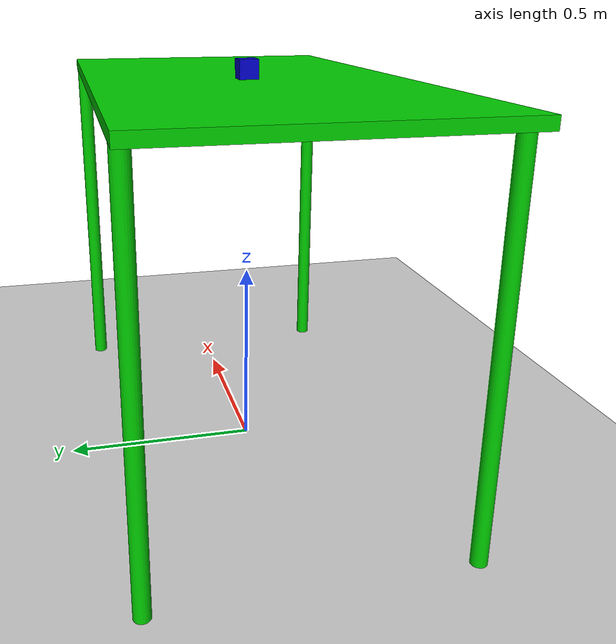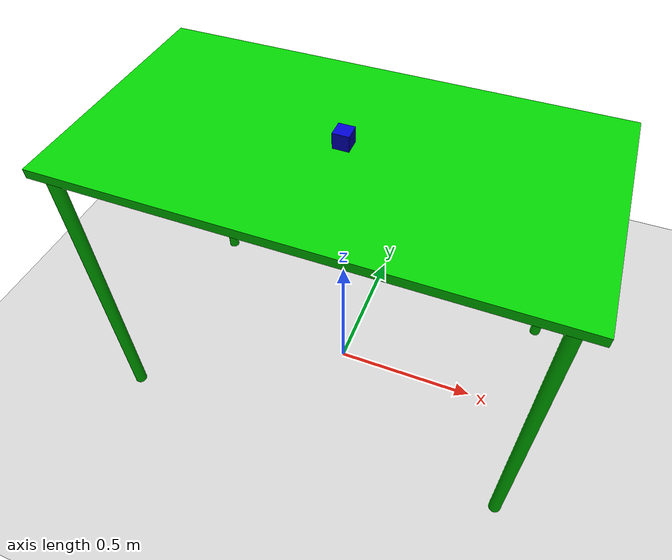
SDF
<?xml version="1.0" ?>
<sdf version="1.6">
    <world name="default">
        <physics default="true" type="dart">
        </physics>
        <plugin
                filename="libPhysicsSystem.so"
                name="gympp::plugins::Physics">
        </plugin>
        <plugin
                filename="libignition-gazebo-user-commands-system.so"
                name="ignition::gazebo::systems::UserCommands">
        </plugin>
        <plugin
                filename="libignition-gazebo-scene-broadcaster-system.so"
                name="ignition::gazebo::systems::SceneBroadcaster">
        </plugin>
        <plugin
                filename="libECMProvider.so"
                name="gympp::plugins::ECMProvider">
        </plugin>

        <gui fullscreen="0">
            <!-- 3D scene -->
            <plugin filename="GzScene3D" name="3D View">
                <ignition-gui>
                    <title>3D View</title>
                    <property type="bool" key="showTitleBar">false</property>
                    <property type="string" key="state">docked</property>
                </ignition-gui>
                <engine>ogre</engine>
                <scene>scene</scene>
                <ambient_light>0.4 0.4 0.4</ambient_light>
                <background_color>0.8 0.8 0.8</background_color>
                <camera_pose>-6 0 6 0 0.5 0</camera_pose>
                <service>/world/default/scene/info</service>
                <pose_topic>/world/default/pose/info</pose_topic>
            </plugin>

            <!-- World control -->
            <plugin filename="WorldControl" name="World control">
                <ignition-gui>
                    <title>World control</title>
                    <property type="bool" key="showTitleBar">false</property>
                    <property type="bool" key="resizable">false</property>
                    <property type="double" key="height">72</property>
                    <property type="double" key="width">121</property>
                    <property type="double" key="z">1</property>
                    <property type="string" key="state">floating</property>
                    <anchors target="3D View">
                        <line own="left" target="left"/>
                        <line own="bottom" target="bottom"/>
                    </anchors>
                </ignition-gui>
                <play_pause>true</play_pause>
                <step>true</step>
                <start_paused>true</start_paused>
                <service>/world/default/control</service>
                <stats_topic>/world/default/stats</stats_topic>
            </plugin>

            <!-- World statistics -->
            <plugin filename="WorldStats" name="World stats">
                <ignition-gui>
                    <title>World stats</title>
                    <property type="bool" key="showTitleBar">false</property>
                    <property type="bool" key="resizable">false</property>
                    <property type="double" key="height">110</property>
                    <property type="double" key="width">290</property>
                    <property type="double" key="z">1</property>
                    <property type="string" key="state">floating</property>
                    <anchors target="3D View">
                        <line own="right" target="right"/>
                        <line own="bottom" target="bottom"/>
                    </anchors>
                </ignition-gui>
                <sim_time>true</sim_time>
                <real_time>true</real_time>
                <real_time_factor>true</real_time_factor>
                <iterations>true</iterations>
                <topic>/world/default/stats</topic>
            </plugin>
        </gui>

        <light type="directional" name="sun">
            <cast_shadows>true</cast_shadows>
            <pose>10 0 3 0 0 0</pose>
            <diffuse>0.8 0.8 0.8 1</diffuse>
            <specular>0.2 0.2 0.2 1</specular>
            <attenuation>
                <range>1000</range>
                <constant>0.9</constant>
                <linear>0.01</linear>
                <quadratic>0.001</quadratic>
            </attenuation>
            <direction>0.75 0.075 -0.667</direction>
        </light>

        <model name="ground_plane">
            <static>true</static>
            <link name="link">
                <collision name="collision">
                    <geometry>
                        <plane>
                            <normal>0 0 1</normal>
                        </plane>
                    </geometry>
                    <surface>
                        <friction>
                            <ode>
                                <mu>100</mu>
                                <mu2>50</mu2>
                            </ode>
                        </friction>
                    </surface>
                </collision>
                <visual name="visual">
                    <geometry>
                        <plane>
                            <normal>0 0 1</normal>
                            <size>100 100</size>
                        </plane>
                    </geometry>
                    <material>
                        <ambient>0.8 0.8 0.8 1</ambient>
                        <diffuse>0.8 0.8 0.8 1</diffuse>
                        <specular>0.8 0.8 0.8 1</specular>
                    </material>
                </visual>
            </link>
        </model>

        <model name="table">
            <static>true</static>
            <link name="link">
              <collision name="surface">
                <pose>0 0 1.0 0 0 0</pose>
                <geometry>
                  <box>
                    <size>1.5 0.8 0.03</size>
                  </box>
                </geometry>
                <surface>
                  <friction>
                    <ode>
                      <mu>0.6</mu>
                      <mu2>0.6</mu2>
                    </ode>
                  </friction>
                </surface>
              </collision>
              <visual name="visual1">
                <pose>0 0 1.0 0 0 0</pose>
                <geometry>
                  <box>
                    <size>1.5 0.8 0.03</size>
                  </box>
                </geometry>
                <material>
                    <ambient>0.0 0.8 0.0 1</ambient>
                    <diffuse>0.0 0.8 0.0 1</diffuse>
                    <specular>0.0 0.8 0.0 1</specular>
                </material>
              </visual>
              <collision name="front_left_leg">
                <pose>0.68 0.38 0.5 0 0 0</pose>
                <geometry>
                  <cylinder>
                    <radius>0.02</radius>
                    <length>1.0</length>
                  </cylinder>
                </geometry>
              </collision>
              <visual name="front_left_leg">
                <pose>0.68 0.38 0.5 0 0 0</pose>
                <geometry>
                  <cylinder>
                    <radius>0.02</radius>
                    <length>1.0</length>
                  </cylinder>
                </geometry>
                <material>
                    <ambient>0.0 0.8 0.0 1</ambient>
                    <diffuse>0.0 0.8 0.0 1</diffuse>
                    <specular>0.0 0.8 0.0 1</specular>
                </material>
              </visual>
              <collision name="front_right_leg">
                <pose>0.68 -0.38 0.5 0 0 0</pose>
                <geometry>
                  <cylinder>
                    <radius>0.02</radius>
                    <length>1.0</length>
                  </cylinder>
                </geometry>
              </collision>
              <visual name="front_right_leg">
                <pose>0.68 -0.38 0.5 0 0 0</pose>
                <geometry>
                  <cylinder>
                    <radius>0.02</radius>
                    <length>1.0</length>
                  </cylinder>
                </geometry>
                <material>
                    <ambient>0.0 0.8 0.0 1</ambient>
                    <diffuse>0.0 0.8 0.0 1</diffuse>
                    <specular>0.0 0.8 0.0 1</specular>
                </material>
              </visual>
              <collision name="back_right_leg">
                <pose>-0.68 -0.38 0.5 0 0 0</pose>
                <geometry>
                  <cylinder>
                    <radius>0.02</radius>
                    <length>1.0</length>
                  </cylinder>
                </geometry>
              </collision>
              <visual name="back_right_leg">
                <pose>-0.68 -0.38 0.5 0 0 0</pose>
                <geometry>
                  <cylinder>
                    <radius>0.02</radius>
                    <length>1.0</length>
                  </cylinder>
                </geometry>
                <material>
                    <ambient>0.0 0.8 0.0 1</ambient>
                    <diffuse>0.0 0.8 0.0 1</diffuse>
                    <specular>0.0 0.8 0.0 1</specular>
                </material>
              </visual>
              <collision name="back_left_leg">
                <pose>-0.68 0.38 0.5 0 0 0</pose>
                <geometry>
                  <cylinder>
                    <radius>0.02</radius>
                    <length>1.0</length>
                  </cylinder>
                </geometry>
              </collision>
              <visual name="back_left_leg">
                <pose>-0.68 0.38 0.5 0 0 0</pose>
                <geometry>
                  <cylinder>
                    <radius>0.02</radius>
                    <length>1.0</length>
                  </cylinder>
                </geometry>
                <material>
                    <ambient>0.0 0.8 0.0 1</ambient>
                    <diffuse>0.0 0.8 0.0 1</diffuse>
                    <specular>0.0 0.8 0.0 1</specular>
                </material>
              </visual>
            </link>
          </model>

        <model name="wood_cube_5cm">
            <link name="link">
              <pose>0 0 1.04 0 0 0</pose>
              <inertial>
                <mass>0.0565</mass>
                <inertia>
                  <ixx>2.3541666666666672e-05</ixx>
                  <ixy>0</ixy>
                  <ixz>0</ixz>
                  <iyy>2.3541666666666672e-05</iyy>
                  <iyz>0</iyz>
                  <izz>2.3541666666666672e-05</izz>
                </inertia>
              </inertial>
              <collision name="collision">
                <geometry>
                  <box>
                    <size>0.05 0.05 0.05</size>
                  </box>
                </geometry>
                <surface>
                  <contact>
                    <poissons_ratio>0.347</poissons_ratio>
                    <elastic_modulus>8.8e+09</elastic_modulus>
                    <ode>
                      <kp>100000</kp>
                      <kd>1</kd>
                      <max_vel>1.0</max_vel>
                      <min_depth>0.001</min_depth>
                    </ode>
                  </contact>
                  <friction>
                    <torsional>
                      <coefficient>1.0</coefficient>
                      <use_patch_radius>0</use_patch_radius>
                      <surface_radius>0.05</surface_radius>
                    </torsional>
                  </friction>
                </surface>
              </collision>
              <visual name="visual">
                <geometry>
                  <box>
                    <size>0.05 0.05 0.05</size>
                  </box>
                </geometry>
                <material>
                    <ambient>0.0 0.0 0.8 1</ambient>
                    <diffuse>0.0 0.0 0.8 1</diffuse>
                    <specular>0.0 0.0 0.8 1</specular>
                </material>
              </visual>
            </link>
          </model>

    </world>
</sdf>
